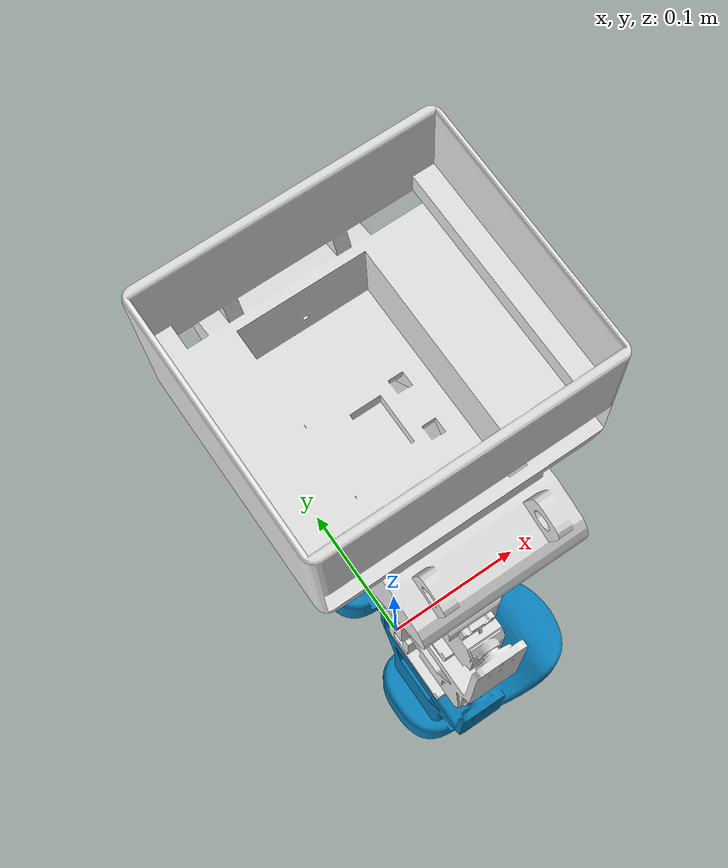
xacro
<?xml version="1.0"?>
<robot name="muneco_bipedo" xmlns:xacro="http://www.ros.org/wiki/xacro">
  <link name="world" />
  <joint name="world_to_base" type="fixed">
    <parent link="world" />
    <child link="Base_link" />
    <origin xyz="0 0 0.403" rpy="1.57079632679 0 0" />
  </joint>

  <xacro:include filename="$(find robot_description)/urdf/urdf_bipedo/Muneco_Bipedo_URDF_V3.urdf" />
</robot>

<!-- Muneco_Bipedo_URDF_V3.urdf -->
<robot
  name="Muneco_Bipedo_URDF_V3">
  <link
    name="Base_link">
    <inertial>
      <origin
        xyz="-0.00011668 0.0049504 6.701E-06"
        rpy="0 0 0" />
      <mass
        value="0.91157" />
      <inertia
        ixx="0.0022258"
        ixy="1.6323E-05"
        ixz="-2.2497E-07"
        iyy="0.0026058"
        iyz="-1.1143E-07"
        izz="0.0015161" />
    </inertial>
    <visual>
      <origin
        xyz="0 0 0"
        rpy="0 0 0" />
      <geometry>
        <mesh
          filename="package://robot_description/meshes/meshes_bipedo/Base_link.STL" />
      </geometry>
      <material
        name="">
        <color
          rgba="0.89412 0.89412 0.89412 1" />
      </material>
    </visual>
    <collision>
      <origin
        xyz="0 0 0"
        rpy="0 0 0" />
      <geometry>
        <mesh
          filename="package://robot_description/meshes/meshes_bipedo/Base_link.STL" />
      </geometry>
    </collision>
  </link>
  <link
    name="Right_Hip_Roll_Link">
    <inertial>
      <origin
        xyz="-0.040727 0.030816 -0.029488"
        rpy="0 0 0" />
      <mass
        value="0.073278" />
      <inertia
        ixx="4.6016E-05"
        ixy="1.8705E-05"
        ixz="-1.3912E-06"
        iyy="4.8453E-05"
        iyz="1.7144E-07"
        izz="5.8163E-05" />
    </inertial>
    <visual>
      <origin
        xyz="0 0 0"
        rpy="0 0 0" />
      <geometry>
        <mesh
          filename="package://robot_description/meshes/meshes_bipedo/Right_Hip_Roll_Link.STL" />
      </geometry>
      <material
        name="">
        <color
          rgba="0.89412 0.89412 0.89412 1" />
      </material>
    </visual>
    <collision>
      <origin
        xyz="0 0 0"
        rpy="0 0 0" />
      <geometry>
        <mesh
          filename="package://robot_description/meshes/meshes_bipedo/Right_Hip_Roll_Link.STL" />
      </geometry>
    </collision>
  </link>
  <joint
    name="Right_Hip_Roll_Joint"
    type="revolute">
    <origin
      xyz="-0.028104 -0.048648 0.051489"
      rpy="-1.5846 0.67051 1.5485" />
    <parent
      link="Base_link" />
    <child
      link="Right_Hip_Roll_Link" />
    <axis
      xyz="0 0 1" />
    <limit
      lower="-0.34907"
      upper="1.5708"
      effort="100"
      velocity="100" />
  </joint>
  <link
    name="Right_Hip_Pitch_Link">
    <inertial>
      <origin
        xyz="-0.088223 -0.0016045 -0.035868"
        rpy="0 0 0" />
      <mass
        value="0.12596" />
      <inertia
        ixx="7.7077E-05"
        ixy="-8.7584E-06"
        ixz="-1.5455E-05"
        iyy="0.00025837"
        iyz="-5.3072E-08"
        izz="0.00020189" />
    </inertial>
    <visual>
      <origin
        xyz="0 0 0"
        rpy="0 0 0" />
      <geometry>
        <mesh
          filename="package://robot_description/meshes/meshes_bipedo/Right_Hip_Pitch_Link.STL" />
      </geometry>
      <material
        name="">
        <color
          rgba="0.89412 0.89412 0.89412 1" />
      </material>
    </visual>
    <collision>
      <origin
        xyz="0 0 0"
        rpy="0 0 0" />
      <geometry>
        <mesh
          filename="package://robot_description/meshes/meshes_bipedo/Right_Hip_Pitch_Link.STL" />
      </geometry>
    </collision>
  </link>
  <joint
    name="Right_Hip_Pitch_Joint"
    type="revolute">
    <origin
      xyz="-0.066091 0.0033213 -0.027572"
      rpy="1.5776 0.0054396 -0.67299" />
    <parent
      link="Right_Hip_Roll_Link" />
    <child
      link="Right_Hip_Pitch_Link" />
    <axis
      xyz="0 0 1" />
    <limit
      lower="-1.5708"
      upper="1.5708"
      effort="100"
      velocity="100" />
  </joint>
  <link
    name="Right_Knee_Link">
    <inertial>
      <origin
        xyz="-0.11278 -0.019224 -0.039013"
        rpy="0 0 0" />
      <mass
        value="0.31126" />
      <inertia
        ixx="0.00035021"
        ixy="-1.6335E-05"
        ixz="-1.1034E-05"
        iyy="0.00033518"
        iyz="-9.5929E-08"
        izz="0.00043411" />
    </inertial>
    <visual>
      <origin
        xyz="0 0 0"
        rpy="0 0 0" />
      <geometry>
        <mesh
          filename="package://robot_description/meshes/meshes_bipedo/Right_Knee_Link.STL" />
      </geometry>
      <material
        name="">
        <color
          rgba="0.039216 0.4902 0.7098 1" />
      </material>
    </visual>
    <collision>
      <origin
        xyz="0 0 0"
        rpy="0 0 0" />
      <geometry>
        <mesh
          filename="package://robot_description/meshes/meshes_bipedo/Right_Knee_Link.STL" />
      </geometry>
    </collision>
  </link>
  <joint
    name="Right_Knee_Joint"
    type="revolute">
    <origin
      xyz="-0.13855 -0.00026394 0"
      rpy="0.003996 0 -0.0053125" />
    <parent
      link="Right_Hip_Pitch_Link" />
    <child
      link="Right_Knee_Link" />
    <axis
      xyz="0 0 -1" />
    <limit
      lower="-1.5708"
      upper="1.5708"
      effort="100"
      velocity="100" />
  </joint>
  <link
    name="Left_Hip_Roll_Link">
    <inertial>
      <origin
        xyz="-0.00011668 0.0049504 6.701E-06"
        rpy="0 0 0" />
      <mass
        value="0.91157" />
      <inertia
        ixx="0.0022258"
        ixy="1.6323E-05"
        ixz="-2.2497E-07"
        iyy="0.0026058"
        iyz="-1.1143E-07"
        izz="0.0015161" />
    </inertial>
    <visual>
      <origin
        xyz="0 0 0"
        rpy="0 0 0" />
      <geometry>
        <mesh
          filename="package://robot_description/meshes/meshes_bipedo/Left_Hip_Roll_Link.STL" />
      </geometry>
      <material
        name="">
        <color
          rgba="0.89412 0.89412 0.89412 1" />
      </material>
    </visual>
    <collision>
      <origin
        xyz="0 0 0"
        rpy="0 0 0" />
      <geometry>
        <mesh
          filename="package://robot_description/meshes/meshes_bipedo/Left_Hip_Roll_Link.STL" />
      </geometry>
    </collision>
  </link>
  <joint
    name="Left_Hip_Roll_Joint"
    type="revolute">
    <origin
      xyz="-0.028104 -0.048444 -0.051311"
      rpy="-1.557 -0.67051 1.5485" />
    <parent
      link="Base_link" />
    <child
      link="Left_Hip_Roll_Link" />
    <axis
      xyz="0 0 -1" />
    <limit
      lower="-0.34907"
      upper="1.5708"
      effort="100"
      velocity="100" />
  </joint>
  <link
    name="Left_Hip_Pitch_Link">
    <inertial>
      <origin
        xyz="-0.088136 0.0042328 -0.035868"
        rpy="0 0 0" />
      <mass
        value="0.12596" />
      <inertia
        ixx="7.7759E-05"
        ixy="1.4143E-05"
        ixz="-1.5447E-05"
        iyy="0.00025769"
        iyz="5.1347E-07"
        izz="0.00020189" />
    </inertial>
    <visual>
      <origin
        xyz="0 0 0"
        rpy="0 0 0" />
      <geometry>
        <mesh
          filename="package://robot_description/meshes/meshes_bipedo/Left_Hip_Pitch_Link.STL" />
      </geometry>
      <material
        name="">
        <color
          rgba="0.89412 0.89412 0.89412 1" />
      </material>
    </visual>
    <collision>
      <origin
        xyz="0 0 0"
        rpy="0 0 0" />
      <geometry>
        <mesh
          filename="package://robot_description/meshes/meshes_bipedo/Left_Hip_Pitch_Link.STL" />
      </geometry>
    </collision>
  </link>
  <joint
    name="Left_Hip_Pitch_Joint"
    type="revolute">
    <origin
      xyz="-0.066105 -0.002994 -0.027575"
      rpy="-1.5776 0.0054058 0.66804" />
    <parent
      link="Left_Hip_Roll_Link" />
    <child
      link="Left_Hip_Pitch_Link" />
    <axis
      xyz="0 0 -1" />
    <limit
      lower="-1.5708"
      upper="1.5708"
      effort="100"
      velocity="100" />
  </joint>
  <link
    name="Left_Knee_Link">
    <inertial>
      <origin
        xyz="-0.1133 0.015702 -0.038984"
        rpy="0 0 0" />
      <mass
        value="0.31126" />
      <inertia
        ixx="0.00034922"
        ixy="1.6708E-05"
        ixz="-1.1066E-05"
        iyy="0.00033616"
        iyz="1.9645E-08"
        izz="0.0004341" />
    </inertial>
    <visual>
      <origin
        xyz="0 0 0"
        rpy="0 0 0" />
      <geometry>
        <mesh
          filename="package://robot_description/meshes/meshes_bipedo/Left_Knee_Link.STL" />
      </geometry>
      <material
        name="">
        <color
          rgba="0.039216 0.4902 0.7098 1" />
      </material>
    </visual>
    <collision>
      <origin
        xyz="0 0 0"
        rpy="0 0 0" />
      <geometry>
        <mesh
          filename="package://robot_description/meshes/meshes_bipedo/Left_Knee_Link.STL" />
      </geometry>
    </collision>
  </link>
  <joint
    name="Left_Knee_Joint"
    type="revolute">
    <origin
      xyz="-0.13848 0.0043924 0"
      rpy="0 0 -0.02449" />
    <parent
      link="Left_Hip_Pitch_Link" />
    <child
      link="Left_Knee_Link" />
    <axis
      xyz="0 0 1" />
    <limit
      lower="-1.5708"
      upper="1.5708"
      effort="100"
      velocity="100" />
  </joint>
</robot>
